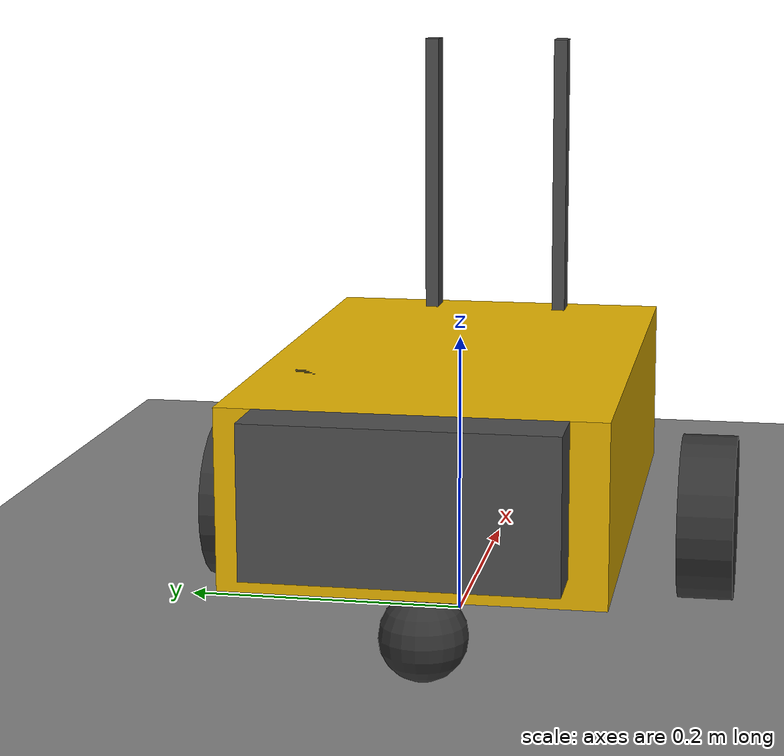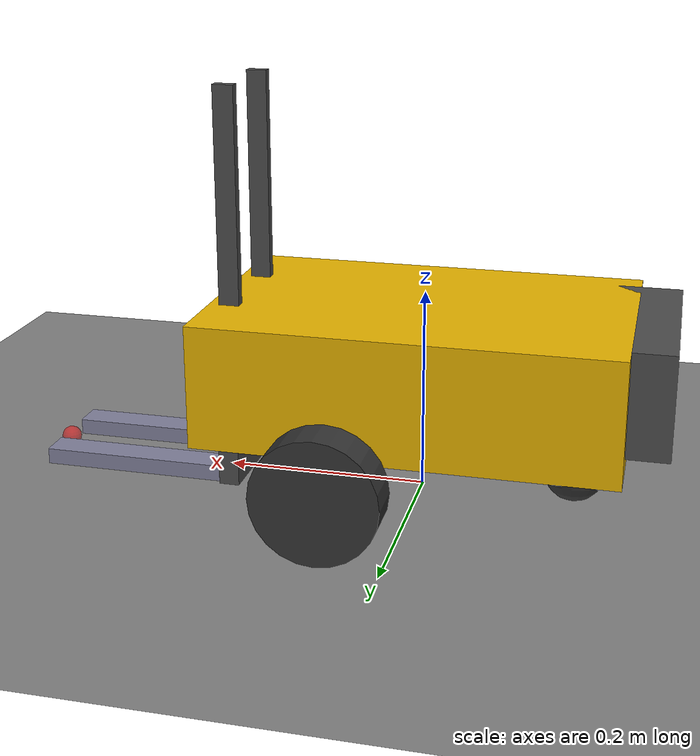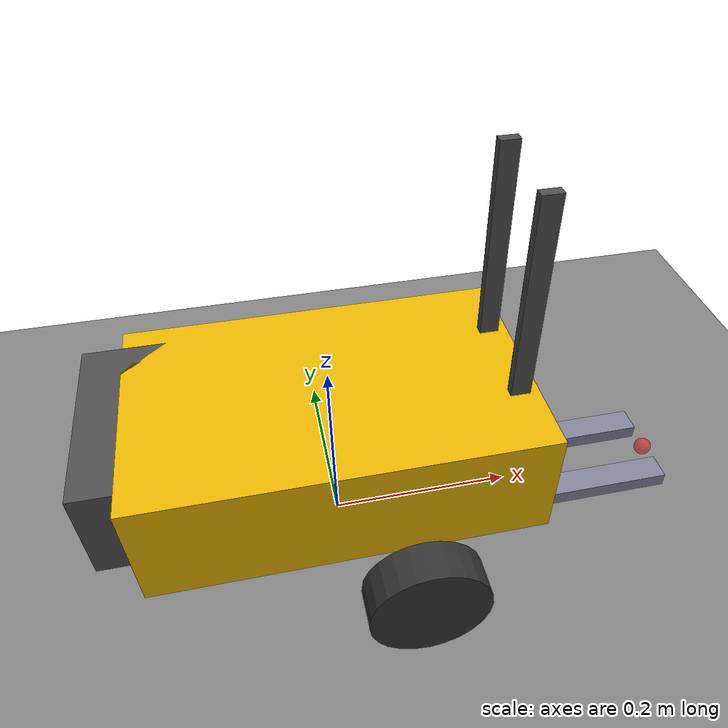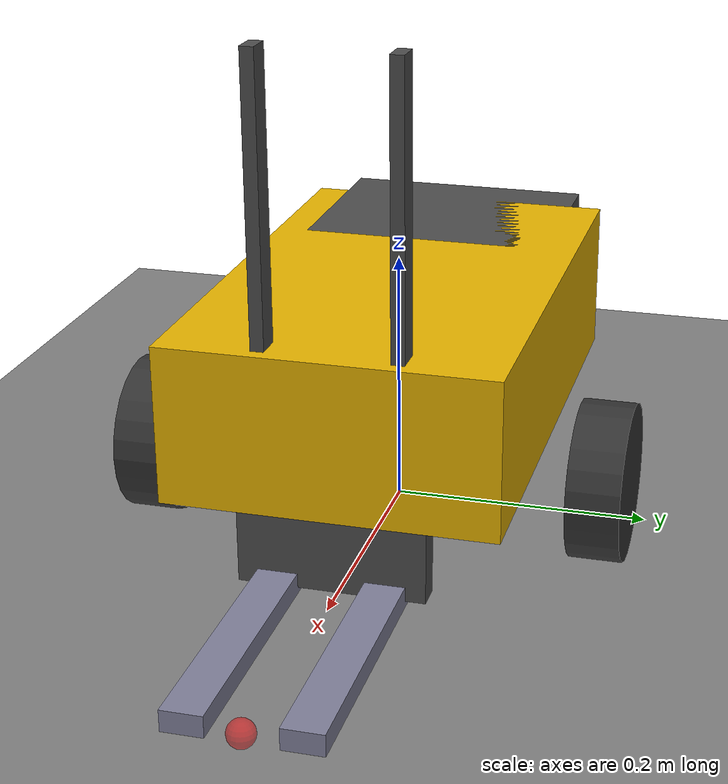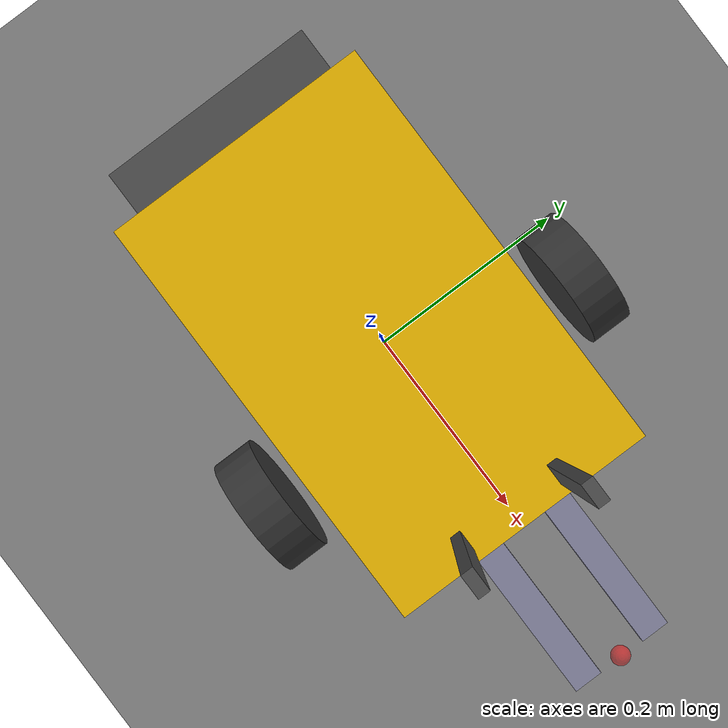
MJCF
<?xml version="1.0" encoding="utf-8"?>
<mujoco model="forklift">

  <option timestep="0.002" gravity="0 0 -9.81" integrator="RK4" cone="elliptic"/>

  <default>
    <geom condim="3" friction="0.8 0.01 0.01"
          solref="0.02 1" solimp="0.9 0.95 0.001"/>
    <joint damping="0.5" armature="0.01"/>
  </default>

  <asset>
    <texture name="floor_tex" type="2d" builtin="checker"
             rgb1="0.6 0.6 0.6" rgb2="0.4 0.4 0.4" width="512" height="512"/>
    <material name="floor_mat" texture="floor_tex" texrepeat="4 4" reflectance="0.1"/>
    <material name="body_mat"  rgba="0.9 0.7 0.0 1"/>
    <material name="wheel_mat" rgba="0.2 0.2 0.2 1"/>
    <material name="fork_mat"  rgba="0.5 0.5 0.6 1"/>
    <material name="mast_mat"  rgba="0.3 0.3 0.3 1"/>
  </asset>

  <worldbody>

    <geom name="floor" type="plane" size="5 5 0.1"
          material="floor_mat" condim="3" friction="0.8 0.01 0.01"
          solref="0.02 1" solimp="0.9 0.95 0.001"/>

    <body name="base_link" pos="0 0 0.13" euler="0 0 0">
      <freejoint name="root"/>

      <!-- Main body: 0.40 x 0.25 x 0.12 m (half-extents) -->
      <geom name="base_geom" type="box" size="0.20 0.125 0.06"
            material="body_mat" mass="5.0"/>

      <!-- Counterweight (rear): balances fork/mast weight -->
      <geom name="counterweight_geom" type="box" size="0.08 0.10 0.05"
            pos="-0.16 0 0.01" material="mast_mat" mass="4.0"/>

      <!--
        Drive wheels: X=+0.06 (forward of center) to place axle ahead of COM.
        fromto defines cylinder axis explicitly along Y → no euler ambiguity.
      -->
      <body name="left_wheel_body" pos="0.06 0.175 -0.07">
        <joint name="left_wheel_joint" type="hinge" axis="0 1 0"
               damping="0.05" armature="0.005"/>
        <geom name="left_wheel_geom" type="cylinder"
              fromto="0 -0.02 0  0 0.02 0" size="0.06"
              material="wheel_mat" mass="0.5"
              friction="1.0 0.005 0.0001"
              solref="0.01 1" solimp="0.95 0.99 0.001"/>
      </body>

      <body name="right_wheel_body" pos="0.06 -0.175 -0.07">
        <joint name="right_wheel_joint" type="hinge" axis="0 1 0"
               damping="0.05" armature="0.005"/>
        <geom name="right_wheel_geom" type="cylinder"
              fromto="0 -0.02 0  0 0.02 0" size="0.06"
              material="wheel_mat" mass="0.5"
              friction="1.0 0.005 0.0001"
              solref="0.01 1" solimp="0.95 0.99 0.001"/>
      </body>

      <!-- Rear caster: passive support, near-zero friction -->
      <body name="caster_body" pos="-0.15 0 -0.10">
        <geom name="caster_geom" type="sphere" size="0.03"
              material="wheel_mat" mass="0.1"
              friction="0.001 0.001 0.001"
              solref="0.02 1" solimp="0.9 0.95 0.001"/>
      </body>

      <!-- Mast (visual only, no collision) -->
      <body name="mast_body" pos="0.18 0 0.0">
        <geom name="mast_geom_left" type="box" size="0.01 0.005 0.15"
              pos="0 0.05 0.12" material="mast_mat" mass="0.3"
              contype="0" conaffinity="0"/>
        <geom name="mast_geom_right" type="box" size="0.01 0.005 0.15"
              pos="0 -0.05 0.12" material="mast_mat" mass="0.3"
              contype="0" conaffinity="0"/>

        <!-- Fork carriage: slides up/down on mast -->
        <body name="fork_carriage" pos="0 0 0.0">
          <joint name="fork_lift_joint" type="slide" axis="0 0 1"
                 range="0.0 0.20" damping="5.0" armature="0.01"/>

          <!--
            Fork prongs: pos Z=-0.117 places fork bottom at ~5mm above ground.
            Calculation: base_z(0.13) + mast_z(0) + carriage_z(0) - 0.117 - thickness(0.008) = 0.005m
          -->
          <geom name="left_fork_geom" type="box" size="0.10 0.015 0.008"
                pos="0.10 0.04 -0.117" material="fork_mat" mass="0.3"/>
          <geom name="right_fork_geom" type="box" size="0.10 0.015 0.008"
                pos="0.10 -0.04 -0.117" material="fork_mat" mass="0.3"/>

          <geom name="carriage_plate_geom" type="box" size="0.01 0.07 0.04"
                pos="0.0 0 -0.08" material="mast_mat" mass="0.2"
                contype="0" conaffinity="0"/>

          <!-- Fork tip site: used for reward distance calculation in env -->
          <site name="fork_tip_site" pos="0.20 0 -0.117" size="0.01"
                rgba="1 0 0 0.5"/>

        </body>
      </body>

    </body>

  </worldbody>

  <actuator>
    <velocity name="left_wheel_vel"  joint="left_wheel_joint"
              kv="5.0" ctrlrange="-5.0 5.0"/>
    <velocity name="right_wheel_vel" joint="right_wheel_joint"
              kv="5.0" ctrlrange="-5.0 5.0"/>
    <velocity name="fork_lift_vel"   joint="fork_lift_joint"
              kv="50.0" ctrlrange="-0.3 0.3"/>
  </actuator>

  <sensor>
    <framepos  name="base_pos"  objtype="body" objname="base_link"/>
    <framequat name="base_quat" objtype="body" objname="base_link"/>
    <jointvel  name="left_wheel_vel_sensor"  joint="left_wheel_joint"/>
    <jointvel  name="right_wheel_vel_sensor" joint="right_wheel_joint"/>
    <jointpos  name="fork_height_sensor"     joint="fork_lift_joint"/>
    <framepos  name="fork_tip_pos" objtype="site" objname="fork_tip_site"/>
  </sensor>

</mujoco>
